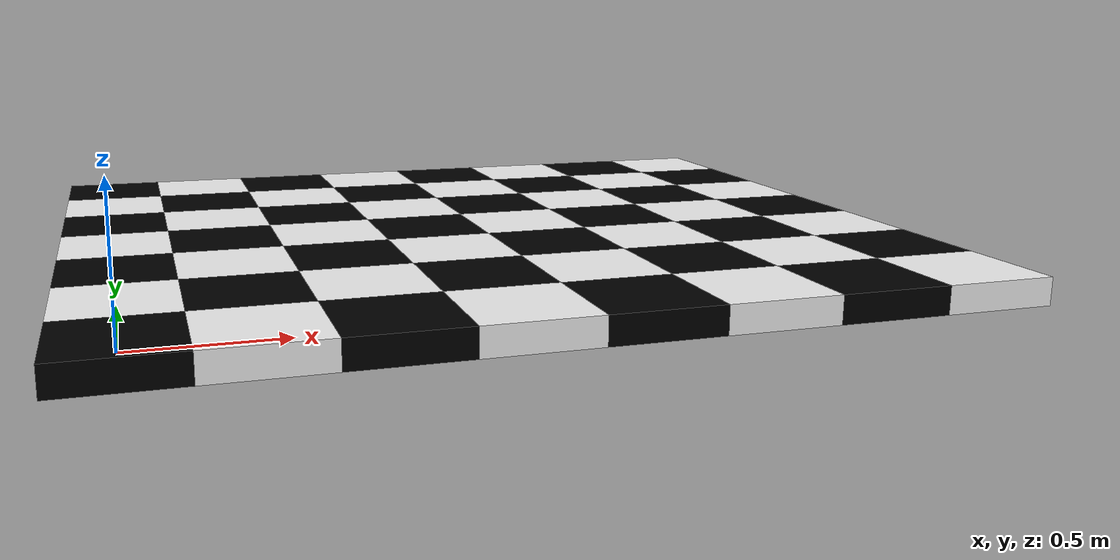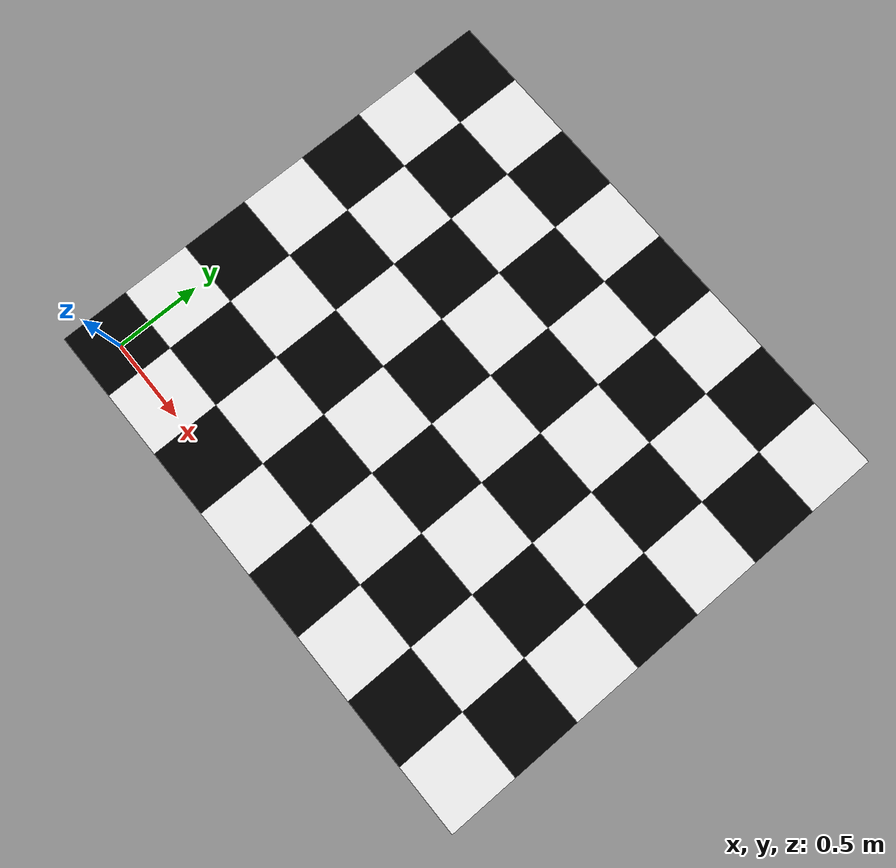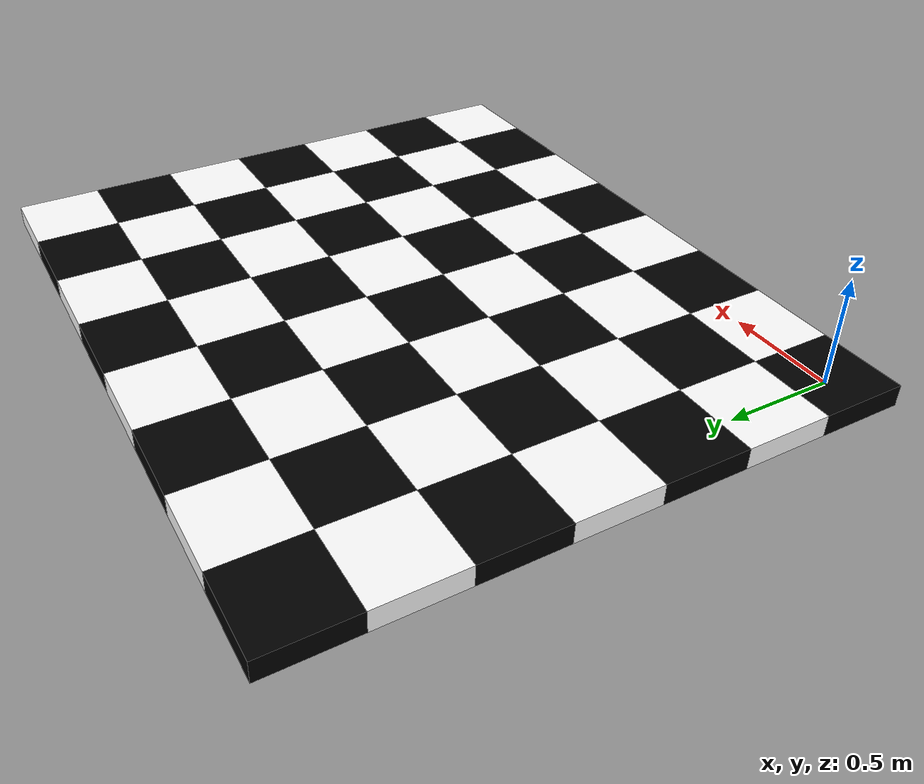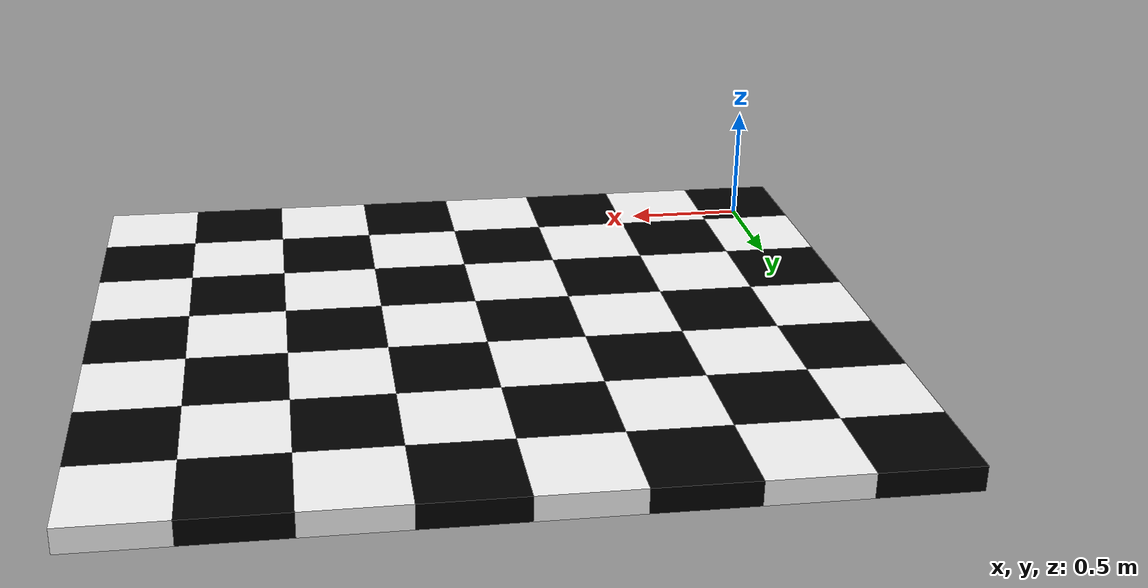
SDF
<?xml version='1.0'?>
<sdf version="1.4">
  <model name="checkerboard">
    <static>true</static>
    <pose>0 0 0 0 0 0</pose>
    <link name="checkerboard">
      <pose>0.0 0.0 0.0 0.0 0.0 0.0</pose>
      <collision name="collision">
        <geometry>
          <box>
            <size>3.2 0.5 0.1</size>
          </box>
        </geometry>
      </collision>
      <visual name="sqr11">
        <geometry>
          <box>
            <size>0.4 0.4 0.1</size>
          </box>
        </geometry>
        <material>
          <ambient>0 0 0 1</ambient>
          <diffuse>0 0 0 1</diffuse>
          <specular>0.1 0.1 0.1 1</specular>
          <emissive>0 0 0 0</emissive>
        </material>
      </visual>

      <visual name="sqr12">
        <pose>0.4 0.0 0.0 0.0 0.0 0.0</pose>
        <geometry>
          <box>
            <size>0.4 0.4 0.1</size>
          </box>
        </geometry>
        <material>
          <ambient>1 1 1 1</ambient>
          <diffuse>1 1 1 1</diffuse>
          <specular>0.1 0.1 0.1 1</specular>
          <emissive>0 0 0 0</emissive>
        </material>
      </visual>
      <visual name="sqr13">
        <pose>0.8 0.0 0.0 0.0 0.0 0.0</pose>
        <geometry>
          <box>
            <size>0.4 0.4 0.1</size>
          </box>
        </geometry>
        <material>
          <ambient>0 0 0 1</ambient>
          <diffuse>0 0 0 1</diffuse>
          <specular>0.1 0.1 0.1 1</specular>
          <emissive>0 0 0 0</emissive>
        </material>
      </visual>
      <visual name="sqr14">
        <pose>1.2 0.0 0.0 0.0 0.0 0.0</pose>
        <geometry>
          <box>
            <size>0.4 0.4 0.1</size>
          </box>
        </geometry>
        <material>
          <ambient>1 1 1 1</ambient>
          <diffuse>1 1 1 1</diffuse>
          <specular>0.1 0.1 0.1 1</specular>
          <emissive>0 0 0 0</emissive>
        </material>
      </visual>
      <visual name="sqr15">
        <pose>1.6 0.0 0.0 0.0 0.0 0.0</pose>
        <geometry>
          <box>
            <size>0.4 0.4 0.1</size>
          </box>
        </geometry>
        <material>
          <ambient>0 0 0 1</ambient>
          <diffuse>0 0 0 1</diffuse>
          <specular>0.1 0.1 0.1 1</specular>
          <emissive>0 0 0 0</emissive>
        </material>
      </visual>
      <visual name="sqr16">
        <pose>2.0 0.0 0.0 0.0 0.0 0.0</pose>
        <geometry>
          <box>
            <size>0.4 0.4 0.1</size>
          </box>
        </geometry>
        <material>
          <ambient>1 1 1 1</ambient>
          <diffuse>1 1 1 1</diffuse>
          <specular>0.1 0.1 0.1 1</specular>
          <emissive>0 0 0 0</emissive>
        </material>
      </visual>
      <visual name="sqr17">
        <pose>2.4 0.0 0.0 0.0 0.0 0.0</pose>
        <geometry>
          <box>
            <size>0.4 0.4 0.1</size>
          </box>
        </geometry>
        <material>
          <ambient>0 0 0 1</ambient>
          <diffuse>0 0 0 1</diffuse>
          <specular>0.1 0.1 0.1 1</specular>
          <emissive>0 0 0 0</emissive>
        </material>
      </visual>
      <visual name="sqr18">
        <pose>2.8 0.0 0.0 0.0 0.0 0.0</pose>
        <geometry>
          <box>
            <size>0.4 0.4 0.1</size>
          </box>
        </geometry>
        <material>
          <ambient>1 1 1 1</ambient>
          <diffuse>1 1 1 1</diffuse>
          <specular>0.1 0.1 0.1 1</specular>
          <emissive>0 0 0 0</emissive>
        </material>
      </visual>
      <visual name="sqr21">
        <pose>0.0 0.4 0.0 0.0 0.0 0.0</pose>
        <geometry>
          <box>
            <size>0.4 0.4 0.1</size>
          </box>
        </geometry>
        <material>
          <ambient>1 1 1 1</ambient>
          <diffuse>1 1 1 1</diffuse>
          <specular>0.1 0.1 0.1 1</specular>
          <emissive>0 0 0 0</emissive>
        </material>
      </visual>

      <visual name="sqr31">
        <pose>0.0 0.8 0.0 0.0 0.0 0.0</pose>
        <geometry>
          <box>
            <size>0.4 0.4 0.1</size>
          </box>
        </geometry>
        <material>
          <ambient>0 0 0 1</ambient>
          <diffuse>0 0 0 1</diffuse>
          <specular>0.1 0.1 0.1 1</specular>
          <emissive>0 0 0 0</emissive>
        </material>
      </visual>

      <visual name="sqr32">
        <pose>0.4 0.8 0.0 0.0 0.0 0.0</pose>
        <geometry>
          <box>
            <size>0.4 0.4 0.1</size>
          </box>
        </geometry>
        <material>
          <ambient>1 1 1 1</ambient>
          <diffuse>1 1 1 1</diffuse>
          <specular>0.1 0.1 0.1 1</specular>
          <emissive>0 0 0 0</emissive>
        </material>
      </visual>
      <visual name="sqr33">
        <pose>0.8 0.8 0.0 0.0 0.0 0.0</pose>
        <geometry>
          <box>
            <size>0.4 0.4 0.1</size>
          </box>
        </geometry>
        <material>
          <ambient>0 0 0 1</ambient>
          <diffuse>0 0 0 1</diffuse>
          <specular>0.1 0.1 0.1 1</specular>
          <emissive>0 0 0 0</emissive>
        </material>
      </visual>
      <visual name="sqr34">
        <pose>1.2 0.8 0.0 0.0 0.0 0.0</pose>
        <geometry>
          <box>
            <size>0.4 0.4 0.1</size>
          </box>
        </geometry>
        <material>
          <ambient>1 1 1 1</ambient>
          <diffuse>1 1 1 1</diffuse>
          <specular>0.1 0.1 0.1 1</specular>
          <emissive>0 0 0 0</emissive>
        </material>
      </visual>
      <visual name="sqr35">
        <pose>1.6 0.8 0.0 0.0 0.0 0.0</pose>
        <geometry>
          <box>
            <size>0.4 0.4 0.1</size>
          </box>
        </geometry>
        <material>
          <ambient>0 0 0 1</ambient>
          <diffuse>0 0 0 1</diffuse>
          <specular>0.1 0.1 0.1 1</specular>
          <emissive>0 0 0 0</emissive>
        </material>
      </visual>
      <visual name="sqr36">
        <pose>2.0 0.8 0.0 0.0 0.0 0.0</pose>
        <geometry>
          <box>
            <size>0.4 0.4 0.1</size>
          </box>
        </geometry>
        <material>
          <ambient>1 1 1 1</ambient>
          <diffuse>1 1 1 1</diffuse>
          <specular>0.1 0.1 0.1 1</specular>
          <emissive>0 0 0 0</emissive>
        </material>
      </visual>
      <visual name="sqr37">
        <pose>2.4 0.8 0.0 0.0 0.0 0.0</pose>
        <geometry>
          <box>
            <size>0.4 0.4 0.1</size>
          </box>
        </geometry>
        <material>
          <ambient>0 0 0 1</ambient>
          <diffuse>0 0 0 1</diffuse>
          <specular>0.1 0.1 0.1 1</specular>
          <emissive>0 0 0 0</emissive>
        </material>
      </visual>
      <visual name="sqr38">
        <pose>2.8 0.8 0.0 0.0 0.0 0.0</pose>
        <geometry>
          <box>
            <size>0.4 0.4 0.1</size>
          </box>
        </geometry>
        <material>
          <ambient>1 1 1 1</ambient>
          <diffuse>1 1 1 1</diffuse>
          <specular>0.1 0.1 0.1 1</specular>
          <emissive>0 0 0 0</emissive>
        </material>
      </visual>

      <visual name="sqr51">
        <pose>0.0 1.6 0.0 0.0 0.0 0.0</pose>
        <geometry>
          <box>
            <size>0.4 0.4 0.1</size>
          </box>
        </geometry>
        <material>
          <ambient>0 0 0 1</ambient>
          <diffuse>0 0 0 1</diffuse>
          <specular>0.1 0.1 0.1 1</specular>
          <emissive>0 0 0 0</emissive>
        </material>
      </visual>

      <visual name="sqr52">
        <pose>0.4 1.6 0.0 0.0 0.0 0.0</pose>
        <geometry>
          <box>
            <size>0.4 0.4 0.1</size>
          </box>
        </geometry>
        <material>
          <ambient>1 1 1 1</ambient>
          <diffuse>1 1 1 1</diffuse>
          <specular>0.1 0.1 0.1 1</specular>
          <emissive>0 0 0 0</emissive>
        </material>
      </visual>
      <visual name="sqr53">
        <pose>0.8 1.6 0.0 0.0 0.0 0.0</pose>
        <geometry>
          <box>
            <size>0.4 0.4 0.1</size>
          </box>
        </geometry>
        <material>
          <ambient>0 0 0 1</ambient>
          <diffuse>0 0 0 1</diffuse>
          <specular>0.1 0.1 0.1 1</specular>
          <emissive>0 0 0 0</emissive>
        </material>
      </visual>
      <visual name="sqr54">
        <pose>1.2 1.6 0.0 0.0 0.0 0.0</pose>
        <geometry>
          <box>
            <size>0.4 0.4 0.1</size>
          </box>
        </geometry>
        <material>
          <ambient>1 1 1 1</ambient>
          <diffuse>1 1 1 1</diffuse>
          <specular>0.1 0.1 0.1 1</specular>
          <emissive>0 0 0 0</emissive>
        </material>
      </visual>
      <visual name="sqr55">
        <pose>1.6 1.6 0.0 0.0 0.0 0.0</pose>
        <geometry>
          <box>
            <size>0.4 0.4 0.1</size>
          </box>
        </geometry>
        <material>
          <ambient>0 0 0 1</ambient>
          <diffuse>0 0 0 1</diffuse>
          <specular>0.1 0.1 0.1 1</specular>
          <emissive>0 0 0 0</emissive>
        </material>
      </visual>
      <visual name="sqr56">
        <pose>2.0 1.6 0.0 0.0 0.0 0.0</pose>
        <geometry>
          <box>
            <size>0.4 0.4 0.1</size>
          </box>
        </geometry>
        <material>
          <ambient>1 1 1 1</ambient>
          <diffuse>1 1 1 1</diffuse>
          <specular>0.1 0.1 0.1 1</specular>
          <emissive>0 0 0 0</emissive>
        </material>
      </visual>
      <visual name="sqr57">
        <pose>2.4 1.6 0.0 0.0 0.0 0.0</pose>
        <geometry>
          <box>
            <size>0.4 0.4 0.1</size>
          </box>
        </geometry>
        <material>
          <ambient>0 0 0 1</ambient>
          <diffuse>0 0 0 1</diffuse>
          <specular>0.1 0.1 0.1 1</specular>
          <emissive>0 0 0 0</emissive>
        </material>
      </visual>
      <visual name="sqr58">
        <pose>2.8 1.6 0.0 0.0 0.0 0.0</pose>
        <geometry>
          <box>
            <size>0.4 0.4 0.1</size>
          </box>
        </geometry>
        <material>
          <ambient>1 1 1 1</ambient>
          <diffuse>1 1 1 1</diffuse>
          <specular>0.1 0.1 0.1 1</specular>
          <emissive>0 0 0 0</emissive>
        </material>
      </visual>

      <visual name="sqr71">
        <pose>0.0 2.4 0.0 0.0 0.0 0.0</pose>
        <geometry>
          <box>
            <size>0.4 0.4 0.1</size>
          </box>
        </geometry>
        <material>
          <ambient>0 0 0 1</ambient>
          <diffuse>0 0 0 1</diffuse>
          <specular>0.1 0.1 0.1 1</specular>
          <emissive>0 0 0 0</emissive>
        </material>
      </visual>

      <visual name="sqr72">
        <pose>0.4 2.4 0.0 0.0 0.0 0.0</pose>
        <geometry>
          <box>
            <size>0.4 0.4 0.1</size>
          </box>
        </geometry>
        <material>
          <ambient>1 1 1 1</ambient>
          <diffuse>1 1 1 1</diffuse>
          <specular>0.1 0.1 0.1 1</specular>
          <emissive>0 0 0 0</emissive>
        </material>
      </visual>
      <visual name="sqr73">
        <pose>0.8 2.4 0.0 0.0 0.0 0.0</pose>
        <geometry>
          <box>
            <size>0.4 0.4 0.1</size>
          </box>
        </geometry>
        <material>
          <ambient>0 0 0 1</ambient>
          <diffuse>0 0 0 1</diffuse>
          <specular>0.1 0.1 0.1 1</specular>
          <emissive>0 0 0 0</emissive>
        </material>
      </visual>
      <visual name="sqr74">
        <pose>1.2 2.4 0.0 0.0 0.0 0.0</pose>
        <geometry>
          <box>
            <size>0.4 0.4 0.1</size>
          </box>
        </geometry>
        <material>
          <ambient>1 1 1 1</ambient>
          <diffuse>1 1 1 1</diffuse>
          <specular>0.1 0.1 0.1 1</specular>
          <emissive>0 0 0 0</emissive>
        </material>
      </visual>
      <visual name="sqr75">
        <pose>1.6 2.4 0.0 0.0 0.0 0.0</pose>
        <geometry>
          <box>
            <size>0.4 0.4 0.1</size>
          </box>
        </geometry>
        <material>
          <ambient>0 0 0 1</ambient>
          <diffuse>0 0 0 1</diffuse>
          <specular>0.1 0.1 0.1 1</specular>
          <emissive>0 0 0 0</emissive>
        </material>
      </visual>
      <visual name="sqr76">
        <pose>2.0 2.4 0.0 0.0 0.0 0.0</pose>
        <geometry>
          <box>
            <size>0.4 0.4 0.1</size>
          </box>
        </geometry>
        <material>
          <ambient>1 1 1 1</ambient>
          <diffuse>1 1 1 1</diffuse>
          <specular>0.1 0.1 0.1 1</specular>
          <emissive>0 0 0 0</emissive>
        </material>
      </visual>
      <visual name="sqr77">
        <pose>2.4 2.4 0.0 0.0 0.0 0.0</pose>
        <geometry>
          <box>
            <size>0.4 0.4 0.1</size>
          </box>
        </geometry>
        <material>
          <ambient>0 0 0 1</ambient>
          <diffuse>0 0 0 1</diffuse>
          <specular>0.1 0.1 0.1 1</specular>
          <emissive>0 0 0 0</emissive>
        </material>
      </visual>
      <visual name="sqr78">
        <pose>2.8 2.4 0.0 0.0 0.0 0.0</pose>
        <geometry>
          <box>
            <size>0.4 0.4 0.1</size>
          </box>
        </geometry>
        <material>
          <ambient>1 1 1 1</ambient>
          <diffuse>1 1 1 1</diffuse>
          <specular>0.1 0.1 0.1 1</specular>
          <emissive>0 0 0 0</emissive>
        </material>
      </visual>

      <visual name="sqr21">
        <pose>0.0 0.4 0.0 0.0 0.0 0.0</pose>
        <geometry>
          <box>
            <size>0.4 0.4 0.1</size>
          </box>
        </geometry>
        <material>
          <ambient>1 1 1 1</ambient>
          <diffuse>1 1 1 1</diffuse>
          <specular>0.1 0.1 0.1 1</specular>
          <emissive>0 0 0 0</emissive>
        </material>
      </visual>

      <visual name="sqr22">
        <pose>0.4 0.4 0.0 0.0 0.0 0.0</pose>
        <geometry>
          <box>
            <size>0.4 0.4 0.1</size>
          </box>
        </geometry>
        <material>
          <ambient>0 0 0 1</ambient>
          <diffuse>0 0 0 1</diffuse>
          <specular>0.1 0.1 0.1 1</specular>
          <emissive>0 0 0 0</emissive>
        </material>
      </visual>

      <visual name="sqr23">
        <pose>0.8 0.4 0.0 0.0 0.0 0.0</pose>
        <geometry>
          <box>
            <size>0.4 0.4 0.1</size>
          </box>
        </geometry>
        <material>
          <ambient>1 1 1 1</ambient>
          <diffuse>1 1 1 1</diffuse>
          <specular>0.1 0.1 0.1 1</specular>
          <emissive>0 0 0 0</emissive>
        </material>
      </visual>
      <visual name="sqr24">
        <pose>1.2 0.4 0.0 0.0 0.0 0.0</pose>
        <geometry>
          <box>
            <size>0.4 0.4 0.1</size>
          </box>
        </geometry>
        <material>
          <ambient>0 0 0 1</ambient>
          <diffuse>0 0 0 1</diffuse>
          <specular>0.1 0.1 0.1 1</specular>
          <emissive>0 0 0 0</emissive>
        </material>
      </visual>
      <visual name="sqr25">
        <pose>1.6 0.4 0.0 0.0 0.0 0.0</pose>
        <geometry>
          <box>
            <size>0.4 0.4 0.1</size>
          </box>
        </geometry>
        <material>
          <ambient>1 1 1 1</ambient>
          <diffuse>1 1 1 1</diffuse>
          <specular>0.1 0.1 0.1 1</specular>
          <emissive>0 0 0 0</emissive>
        </material>
      </visual>
      <visual name="sqr26">
        <pose>2.0 0.4 0.0 0.0 0.0 0.0</pose>
        <geometry>
          <box>
            <size>0.4 0.4 0.1</size>
          </box>
        </geometry>
        <material>
          <ambient>0 0 0 1</ambient>
          <diffuse>0 0 0 1</diffuse>
          <specular>0.1 0.1 0.1 1</specular>
          <emissive>0 0 0 0</emissive>
        </material>
      </visual>
      <visual name="sqr27">
        <pose>2.4 0.4 0.0 0.0 0.0 0.0</pose>
        <geometry>
          <box>
            <size>0.4 0.4 0.1</size>
          </box>
        </geometry>
        <material>
          <ambient>1 1 1 1</ambient>
          <diffuse>1 1 1 1</diffuse>
          <specular>0.1 0.1 0.1 1</specular>
          <emissive>0 0 0 0</emissive>
        </material>
      </visual>
      <visual name="sqr28">
        <pose>2.8 0.4 0.0 0.0 0.0 0.0</pose>
        <geometry>
          <box>
            <size>0.4 0.4 0.1</size>
          </box>
        </geometry>
        <material>
          <ambient>0 0 0 1</ambient>
          <diffuse>0 0 0 1</diffuse>
          <specular>0.1 0.1 0.1 1</specular>
          <emissive>0 0 0 0</emissive>
        </material>
      </visual>

      <visual name="sqr41">
        <pose>0.0 1.2 0.0 0.0 0.0 0.0</pose>
        <geometry>
          <box>
            <size>0.4 0.4 0.1</size>
          </box>
        </geometry>
        <material>
          <ambient>1 1 1 1</ambient>
          <diffuse>1 1 1 1</diffuse>
          <specular>0.1 0.1 0.1 1</specular>
          <emissive>0 0 0 0</emissive>
        </material>
      </visual>

      <visual name="sqr42">
        <pose>0.4 1.2 0.0 0.0 0.0 0.0</pose>
        <geometry>
          <box>
            <size>0.4 0.4 0.1</size>
          </box>
        </geometry>
        <material>
          <ambient>0 0 0 1</ambient>
          <diffuse>0 0 0 1</diffuse>
          <specular>0.1 0.1 0.1 1</specular>
          <emissive>0 0 0 0</emissive>
        </material>
      </visual>

      <visual name="sqr43">
        <pose>0.8 1.2 0.0 0.0 0.0 0.0</pose>
        <geometry>
          <box>
            <size>0.4 0.4 0.1</size>
          </box>
        </geometry>
        <material>
          <ambient>1 1 1 1</ambient>
          <diffuse>1 1 1 1</diffuse>
          <specular>0.1 0.1 0.1 1</specular>
          <emissive>0 0 0 0</emissive>
        </material>
      </visual>
      <visual name="sqr44">
        <pose>1.2 1.2 0.0 0.0 0.0 0.0</pose>
        <geometry>
          <box>
            <size>0.4 0.4 0.1</size>
          </box>
        </geometry>
        <material>
          <ambient>0 0 0 1</ambient>
          <diffuse>0 0 0 1</diffuse>
          <specular>0.1 0.1 0.1 1</specular>
          <emissive>0 0 0 0</emissive>
        </material>
      </visual>
      <visual name="sqr45">
        <pose>1.6 1.2 0.0 0.0 0.0 0.0</pose>
        <geometry>
          <box>
            <size>0.4 0.4 0.1</size>
          </box>
        </geometry>
        <material>
          <ambient>1 1 1 1</ambient>
          <diffuse>1 1 1 1</diffuse>
          <specular>0.1 0.1 0.1 1</specular>
          <emissive>0 0 0 0</emissive>
        </material>
      </visual>
      <visual name="sqr46">
        <pose>2.0 1.2 0.0 0.0 0.0 0.0</pose>
        <geometry>
          <box>
            <size>0.4 0.4 0.1</size>
          </box>
        </geometry>
        <material>
          <ambient>0 0 0 1</ambient>
          <diffuse>0 0 0 1</diffuse>
          <specular>0.1 0.1 0.1 1</specular>
          <emissive>0 0 0 0</emissive>
        </material>
      </visual>
      <visual name="sqr47">
        <pose>2.4 1.2 0.0 0.0 0.0 0.0</pose>
        <geometry>
          <box>
            <size>0.4 0.4 0.1</size>
          </box>
        </geometry>
        <material>
          <ambient>1 1 1 1</ambient>
          <diffuse>1 1 1 1</diffuse>
          <specular>0.1 0.1 0.1 1</specular>
          <emissive>0 0 0 0</emissive>
        </material>
      </visual>
      <visual name="sqr48">
        <pose>2.8 1.2 0.0 0.0 0.0 0.0</pose>
        <geometry>
          <box>
            <size>0.4 0.4 0.1</size>
          </box>
        </geometry>
        <material>
          <ambient>0 0 0 1</ambient>
          <diffuse>0 0 0 1</diffuse>
          <specular>0.1 0.1 0.1 1</specular>
          <emissive>0 0 0 0</emissive>
        </material>
      </visual>

      <visual name="sqr61">
        <pose>0.0 2.0 0.0 0.0 0.0 0.0</pose>
        <geometry>
          <box>
            <size>0.4 0.4 0.1</size>
          </box>
        </geometry>
        <material>
          <ambient>1 1 1 1</ambient>
          <diffuse>1 1 1 1</diffuse>
          <specular>0.1 0.1 0.1 1</specular>
          <emissive>0 0 0 0</emissive>
        </material>
      </visual>

      <visual name="sqr62">
        <pose>0.4 2.0 0.0 0.0 0.0 0.0</pose>
        <geometry>
          <box>
            <size>0.4 0.4 0.1</size>
          </box>
        </geometry>
        <material>
          <ambient>0 0 0 1</ambient>
          <diffuse>0 0 0 1</diffuse>
          <specular>0.1 0.1 0.1 1</specular>
          <emissive>0 0 0 0</emissive>
        </material>
      </visual>

      <visual name="sqr63">
        <pose>0.8 2.0 0.0 0.0 0.0 0.0</pose>
        <geometry>
          <box>
            <size>0.4 0.4 0.1</size>
          </box>
        </geometry>
        <material>
          <ambient>1 1 1 1</ambient>
          <diffuse>1 1 1 1</diffuse>
          <specular>0.1 0.1 0.1 1</specular>
          <emissive>0 0 0 0</emissive>
        </material>
      </visual>
      <visual name="sqr64">
        <pose>1.2 2.0 0.0 0.0 0.0 0.0</pose>
        <geometry>
          <box>
            <size>0.4 0.4 0.1</size>
          </box>
        </geometry>
        <material>
          <ambient>0 0 0 1</ambient>
          <diffuse>0 0 0 1</diffuse>
          <specular>0.1 0.1 0.1 1</specular>
          <emissive>0 0 0 0</emissive>
        </material>
      </visual>
      <visual name="sqr65">
        <pose>1.6 2.0 0.0 0.0 0.0 0.0</pose>
        <geometry>
          <box>
            <size>0.4 0.4 0.1</size>
          </box>
        </geometry>
        <material>
          <ambient>1 1 1 1</ambient>
          <diffuse>1 1 1 1</diffuse>
          <specular>0.1 0.1 0.1 1</specular>
          <emissive>0 0 0 0</emissive>
        </material>
      </visual>
      <visual name="sqr66">
        <pose>2.0 2.0 0.0 0.0 0.0 0.0</pose>
        <geometry>
          <box>
            <size>0.4 0.4 0.1</size>
          </box>
        </geometry>
        <material>
          <ambient>0 0 0 1</ambient>
          <diffuse>0 0 0 1</diffuse>
          <specular>0.1 0.1 0.1 1</specular>
          <emissive>0 0 0 0</emissive>
        </material>
      </visual>
      <visual name="sqr67">
        <pose>2.4 2.0 0.0 0.0 0.0 0.0</pose>
        <geometry>
          <box>
            <size>0.4 0.4 0.1</size>
          </box>
        </geometry>
        <material>
          <ambient>1 1 1 1</ambient>
          <diffuse>1 1 1 1</diffuse>
          <specular>0.1 0.1 0.1 1</specular>
          <emissive>0 0 0 0</emissive>
        </material>
      </visual>
      <visual name="sqr68">
        <pose>2.8 2.0 0.0 0.0 0.0 0.0</pose>
        <geometry>
          <box>
            <size>0.4 0.4 0.1</size>
          </box>
        </geometry>
        <material>
          <ambient>0 0 0 1</ambient>
          <diffuse>0 0 0 1</diffuse>
          <specular>0.1 0.1 0.1 1</specular>
          <emissive>0 0 0 0</emissive>
        </material>
      </visual>
    </link>
  </model>
</sdf>
